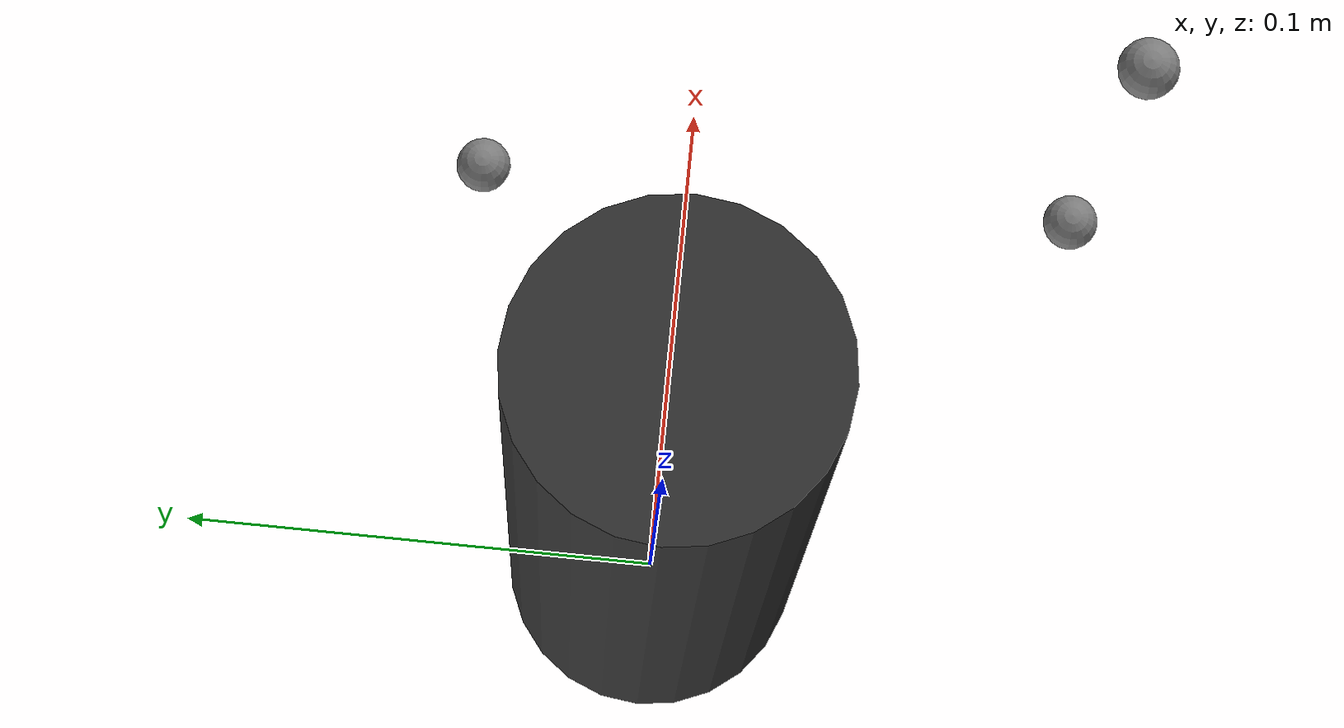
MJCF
<mujoco model="cylinder_2">
  <worldbody>
    <body name="body_cylinder_2" pos="0 0 0">
      <freejoint/>
      <geom name="geom_cylinder_2" type="cylinder" size="0.03 0.1" pos="0 0 0.1" rgba="0.2 0.2 0.2 0.95"/>
      <inertial pos="0 0 0" mass="1" diaginertia="0.5 0.5 0.5"/>

      <!-- right hand tesollo -->
      <!-- left hand inspire -->
      <site name="p_palm_trgt" pos="0.05 -0.07  0.13" />
      <site name="p_palm_top_trgt" pos="0.05 -0.07  0.23" />
      <site name="p_gcp_trgt" pos="0.05 0.03886518  0.13" />
    </body>
  </worldbody>
</mujoco>
